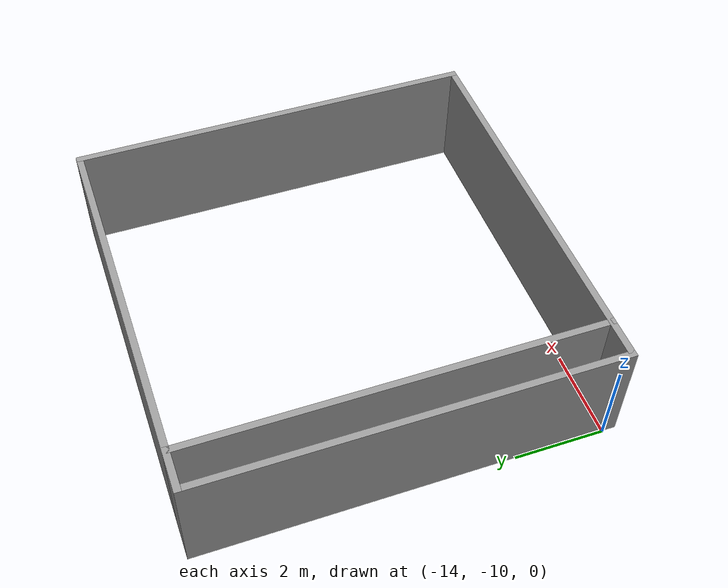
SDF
<?xml version='1.0'?>
<sdf version='1.7'>
  <model name='Lunabotics_wall'>
    <pose>-6.99433 -5.14845 0 0 -0 0</pose>
    <link name='Wall_12'>
      <collision name='Wall_12_Collision'>
        <geometry>
          <box>
            <size>9.25 0.15 2.5</size>
          </box>
        </geometry>
        <pose>0 0 1.25 0 -0 0</pose>
      </collision>
      <visual name='Wall_12_Visual'>
        <pose>0 0 1.25 0 -0 0</pose>
        <geometry>
          <box>
            <size>9.25 0.15 2.5</size>
          </box>
        </geometry>
        <material>
          <script>
            <uri>file://media/materials/scripts/gazebo.material</uri>
            <name>Gazebo/Grey</name>
          </script>
          <ambient>1 1 1 1</ambient>
        </material>
        <meta>
          <layer>0</layer>
        </meta>
      </visual>
      <pose>2.03067 -0.523451 0 0 -0 1.5708</pose>
    </link>
    <link name='Wall_13'>
      <collision name='Wall_13_Collision'>
        <geometry>
          <box>
            <size>8.25 0.15 2.5</size>
          </box>
        </geometry>
        <pose>0 0 1.25 0 -0 0</pose>
      </collision>
      <visual name='Wall_13_Visual'>
        <pose>0 0 1.25 0 -0 0</pose>
        <geometry>
          <box>
            <size>8.25 0.15 2.5</size>
          </box>
        </geometry>
        <material>
          <script>
            <uri>file://media/materials/scripts/gazebo.material</uri>
            <name>Gazebo/Grey</name>
          </script>
          <ambient>1 1 1 1</ambient>
        </material>
        <meta>
          <layer>0</layer>
        </meta>
      </visual>
      <pose>-2.01933 4.02655 0 0 -0 3.14159</pose>
    </link>
    <link name='Wall_2'>
      <collision name='Wall_2_Collision'>
        <geometry>
          <box>
            <size>9.25 0.15 2.5</size>
          </box>
        </geometry>
        <pose>0 0 1.25 0 -0 0</pose>
      </collision>
      <visual name='Wall_2_Visual'>
        <pose>0 0 1.25 0 -0 0</pose>
        <geometry>
          <box>
            <size>9.25 0.15 2.5</size>
          </box>
        </geometry>
        <material>
          <script>
            <uri>file://media/materials/scripts/gazebo.material</uri>
            <name>Gazebo/Grey</name>
          </script>
          <ambient>1 1 1 1</ambient>
        </material>
        <meta>
          <layer>0</layer>
        </meta>
      </visual>
      <pose>-6.91933 -0.523451 0 0 -0 1.5708</pose>
    </link>
    <link name='Wall_3'>
      <collision name='Wall_3_Collision'>
        <geometry>
          <box>
            <size>1 0.15 2.5</size>
          </box>
        </geometry>
        <pose>0 0 1.25 0 -0 0</pose>
      </collision>
      <visual name='Wall_3_Visual'>
        <pose>0 0 1.25 0 -0 0</pose>
        <geometry>
          <box>
            <size>1 0.15 2.5</size>
          </box>
        </geometry>
        <material>
          <script>
            <uri>file://media/materials/scripts/gazebo.material</uri>
            <name>Gazebo/Grey</name>
          </script>
          <ambient>1 1 1 1</ambient>
        </material>
        <meta>
          <layer>0</layer>
        </meta>
      </visual>
      <pose>-6.49433 4.02655 0 0 -0 0</pose>
    </link>
    <link name='Wall_6'>
      <collision name='Wall_6_Collision'>
        <geometry>
          <box>
            <size>9 0.15 2.5</size>
          </box>
        </geometry>
        <pose>0 0 1.25 0 -0 0</pose>
      </collision>
      <visual name='Wall_6_Visual'>
        <pose>0 0 1.25 0 -0 0</pose>
        <geometry>
          <box>
            <size>9 0.15 2.5</size>
          </box>
        </geometry>
        <material>
          <script>
            <uri>file://media/materials/scripts/gazebo.material</uri>
            <name>Gazebo/Grey</name>
          </script>
          <ambient>1 1 1 1</ambient>
        </material>
        <meta>
          <layer>0</layer>
        </meta>
      </visual>
      <pose>-2.39433 -5.07345 0 0 -0 3.14159</pose>
    </link>
    <link name='Wall_9'>
      <collision name='Wall_9_Collision'>
        <geometry>
          <box>
            <size>9.25 0.15 2.5</size>
          </box>
        </geometry>
        <pose>0 0 1.25 0 -0 0</pose>
      </collision>
      <visual name='Wall_9_Visual'>
        <pose>0 0 1.25 0 -0 0</pose>
        <geometry>
          <box>
            <size>9.25 0.15 2.5</size>
          </box>
        </geometry>
        <material>
          <script>
            <uri>file://media/materials/scripts/gazebo.material</uri>
            <name>Gazebo/Grey</name>
          </script>
          <ambient>1 1 1 1</ambient>
        </material>
        <meta>
          <layer>0</layer>
        </meta>
      </visual>
      <pose>-6.06933 -0.523451 0 0 -0 -1.5708</pose>
    </link>
    <static>1</static>
  </model>
</sdf>
